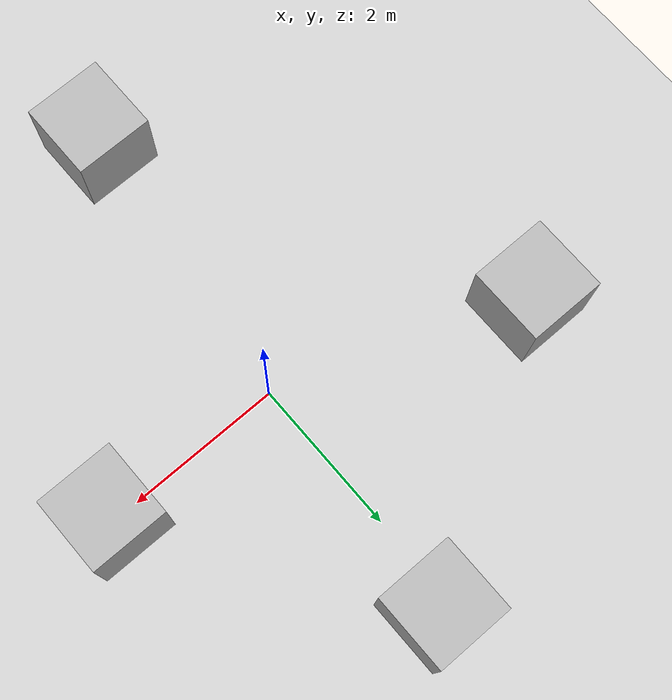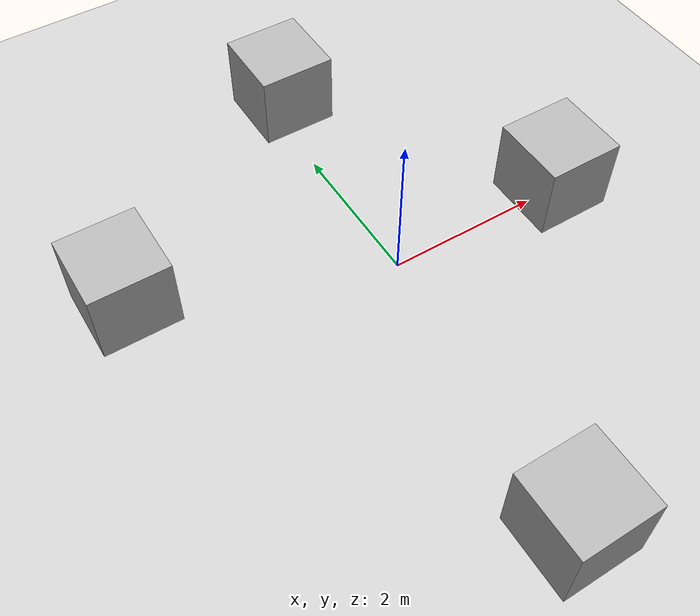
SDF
<?xml version="1.0"?>
<sdf version='1.9'>
  <world name='empty'>
    <physics type="ode">
      <real_time_update_rate>1000.0</real_time_update_rate>
      <max_step_size>0.001</max_step_size>
      <real_time_factor>1</real_time_factor>
      <ode>
        <solver>
          <type>quick</type>
          <iters>150</iters>
          <precon_iters>0</precon_iters>
          <sor>1.400000</sor>
          <use_dynamic_moi_rescaling>1</use_dynamic_moi_rescaling>
        </solver>
        <constraints>
          <cfm>0.00001</cfm>
          <erp>0.2</erp>
          <contact_max_correcting_vel>2000.000000</contact_max_correcting_vel>
          <contact_surface_layer>0.01000</contact_surface_layer>
        </constraints>
      </ode>
    </physics>

    <plugin name='gz::sim::systems::Physics' filename='ignition-gazebo-physics-system'/>
    <plugin name='gz::sim::systems::UserCommands' filename='ignition-gazebo-user-commands-system'/>
    <plugin name='gz::sim::systems::SceneBroadcaster' filename='ignition-gazebo-scene-broadcaster-system'/>
    <plugin name='gz::sim::systems::Contact' filename='ignition-gazebo-contact-system'/>
    <plugin name='gz::sim::systems::Sensors' filename='gz-sim-sensors-system'>
      <render_engine>ogre2</render_engine>
    </plugin>
    <plugin name='gz::sim::systems::Imu' filename='gz-sim-imu-system'/>

    <gravity>0 0 -9.8</gravity>
    <magnetic_field>6e-06 2.3e-05 -4.2e-05</magnetic_field>
    <atmosphere type='adiabatic'/>
    <scene>
      <ambient>0.4 0.4 0.4 1</ambient>
      <background>0.7 0.7 0.7 1</background>
      <shadows>true</shadows>
    </scene>
    <model name='ground_plane'>
      <static>true</static>
      <link name='link'>
        <collision name='collision'>
          <geometry>
            <plane>
              <normal>0 0 1</normal>
              <size>100 100</size>
            </plane>
          </geometry>
          <surface>
            <friction>
              <ode/>
            </friction>
            <bounce/>
            <contact/>
          </surface>
        </collision>
        <visual name='visual'>
          <geometry>
            <plane>
              <normal>0 0 1</normal>
              <size>100 100</size>
            </plane>
          </geometry>
          <material>
            <ambient>0.8 0.8 0.8 1</ambient>
            <diffuse>0.8 0.8 0.8 1</diffuse>
            <specular>0.8 0.8 0.8 1</specular>
          </material>
        </visual>
        <pose>0 0 0 0 -0 0</pose>
        <inertial>
          <pose>0 0 0 0 -0 0</pose>
          <mass>1</mass>
          <inertia>
            <ixx>1</ixx>
            <ixy>0</ixy>
            <ixz>0</ixz>
            <iyy>1</iyy>
            <iyz>0</iyz>
            <izz>1</izz>
          </inertia>
        </inertial>
        <enable_wind>false</enable_wind>
      </link>
      <pose>0 0 0 0 -0 0</pose>
      <self_collide>false</self_collide>
    </model>
    <model name='box'>
      <pose>2.31549 -0.01751 0.5 0 -0 0</pose>
      <link name='box_link'>
        <inertial>
          <inertia>
            <ixx>0.16666</ixx>
            <ixy>0</ixy>
            <ixz>0</ixz>
            <iyy>0.16666</iyy>
            <iyz>0</iyz>
            <izz>0.16666</izz>
          </inertia>
          <mass>1</mass>
          <pose>0 0 0 0 -0 0</pose>
        </inertial>
        <collision name='box_collision'>
          <geometry>
            <box>
              <size>1 1 1</size>
            </box>
          </geometry>
          <surface>
            <friction>
              <ode/>
            </friction>
            <bounce/>
            <contact/>
          </surface>
        </collision>
        <visual name='box_visual'>
          <geometry>
            <box>
              <size>1 1 1</size>
            </box>
          </geometry>
          <material>
            <ambient>0.3 0.3 0.3 1</ambient>
            <diffuse>0.7 0.7 0.7 1</diffuse>
            <specular>1 1 1 1</specular>
          </material>
        </visual>
        <pose>0 0 0 0 -0 0</pose>
        <enable_wind>false</enable_wind>
      </link>
      <static>false</static>
      <self_collide>false</self_collide>
    </model>
    <model name='box_0'>
      <pose>0.183296 3.15794 0.5 0 -0 0</pose>
      <link name='box_link'>
        <inertial>
          <inertia>
            <ixx>0.16666</ixx>
            <ixy>0</ixy>
            <ixz>0</ixz>
            <iyy>0.16666</iyy>
            <iyz>0</iyz>
            <izz>0.16666</izz>
          </inertia>
          <mass>1</mass>
          <pose>0 0 0 0 -0 0</pose>
        </inertial>
        <collision name='box_collision'>
          <geometry>
            <box>
              <size>1 1 1</size>
            </box>
          </geometry>
          <surface>
            <friction>
              <ode/>
            </friction>
            <bounce/>
            <contact/>
          </surface>
        </collision>
        <visual name='box_visual'>
          <geometry>
            <box>
              <size>1 1 1</size>
            </box>
          </geometry>
          <material>
            <ambient>0.3 0.3 0.3 1</ambient>
            <diffuse>0.7 0.7 0.7 1</diffuse>
            <specular>1 1 1 1</specular>
          </material>
        </visual>
        <pose>0 0 0 0 -0 0</pose>
        <enable_wind>false</enable_wind>
      </link>
      <static>false</static>
      <self_collide>false</self_collide>
    </model>
    <model name='box_1'>
      <pose>-0.410042 -3.73695 0.5 0 -0 0</pose>
      <link name='box_link'>
        <inertial>
          <inertia>
            <ixx>0.16666</ixx>
            <ixy>0</ixy>
            <ixz>0</ixz>
            <iyy>0.16666</iyy>
            <iyz>0</iyz>
            <izz>0.16666</izz>
          </inertia>
          <mass>1</mass>
          <pose>0 0 0 0 -0 0</pose>
        </inertial>
        <collision name='box_collision'>
          <geometry>
            <box>
              <size>1 1 1</size>
            </box>
          </geometry>
          <surface>
            <friction>
              <ode/>
            </friction>
            <bounce/>
            <contact/>
          </surface>
        </collision>
        <visual name='box_visual'>
          <geometry>
            <box>
              <size>1 1 1</size>
            </box>
          </geometry>
          <material>
            <ambient>0.3 0.3 0.3 1</ambient>
            <diffuse>0.7 0.7 0.7 1</diffuse>
            <specular>1 1 1 1</specular>
          </material>
        </visual>
        <pose>0 0 0 0 -0 0</pose>
        <enable_wind>false</enable_wind>
      </link>
      <static>false</static>
      <self_collide>false</self_collide>
    </model>
    <model name='box_2'>
      <pose>-3.04654 1.15762 0.5 0 -0 0</pose>
      <link name='box_link'>
        <inertial>
          <inertia>
            <ixx>0.16666</ixx>
            <ixy>0</ixy>
            <ixz>0</ixz>
            <iyy>0.16666</iyy>
            <iyz>0</iyz>
            <izz>0.16666</izz>
          </inertia>
          <mass>1</mass>
          <pose>0 0 0 0 -0 0</pose>
        </inertial>
        <collision name='box_collision'>
          <geometry>
            <box>
              <size>1 1 1</size>
            </box>
          </geometry>
          <surface>
            <friction>
              <ode/>
            </friction>
            <bounce/>
            <contact/>
          </surface>
        </collision>
        <visual name='box_visual'>
          <geometry>
            <box>
              <size>1 1 1</size>
            </box>
          </geometry>
          <material>
            <ambient>0.3 0.3 0.3 1</ambient>
            <diffuse>0.7 0.7 0.7 1</diffuse>
            <specular>1 1 1 1</specular>
          </material>
        </visual>
        <pose>0 0 0 0 -0 0</pose>
        <enable_wind>false</enable_wind>
      </link>
      <static>false</static>
      <self_collide>false</self_collide>
    </model>
    <light name='sun' type='directional'>
      <pose>0 0 10 0 -0 0</pose>
      <cast_shadows>true</cast_shadows>
      <intensity>1</intensity>
      <direction>-0.5 0.1 -0.9</direction>
      <diffuse>0.8 0.8 0.8 1</diffuse>
      <specular>0.2 0.2 0.2 1</specular>
      <attenuation>
        <range>1000</range>
        <linear>0.01</linear>
        <constant>0.90000000000000002</constant>
        <quadratic>0.001</quadratic>
      </attenuation>
      <spot>
        <inner_angle>0</inner_angle>
        <outer_angle>0</outer_angle>
        <falloff>0</falloff>
      </spot>
    </light>
  </world>
</sdf>
